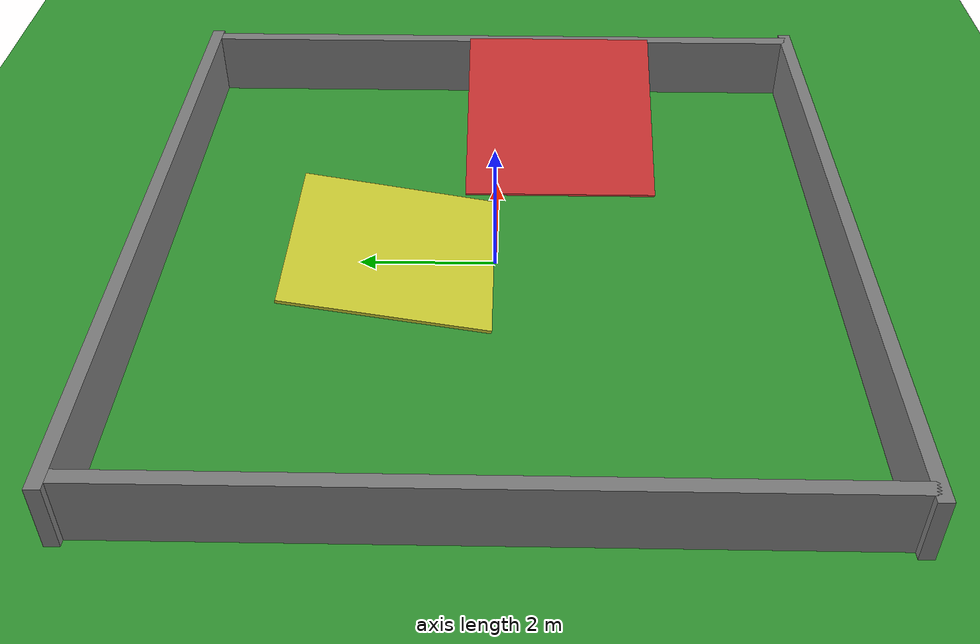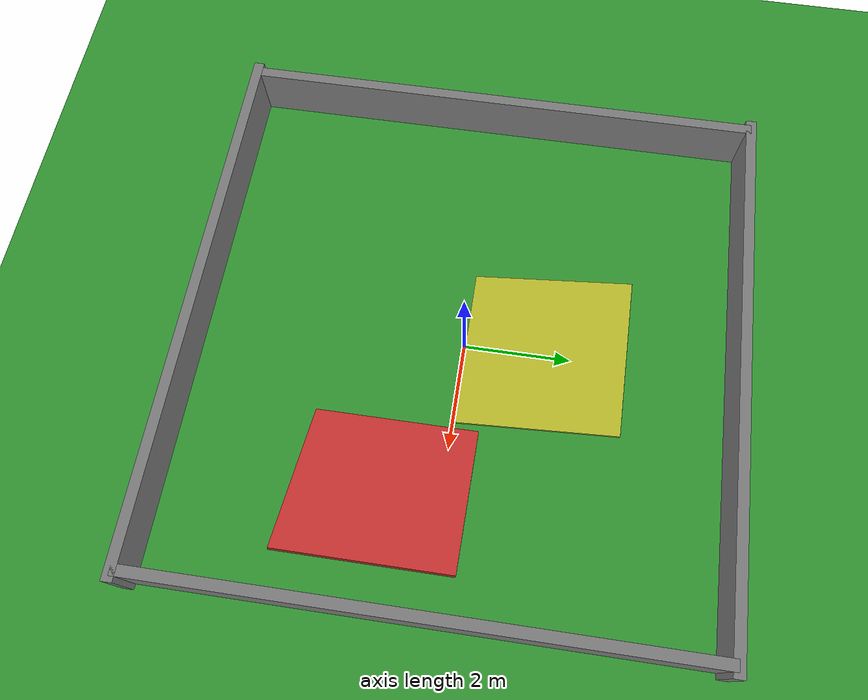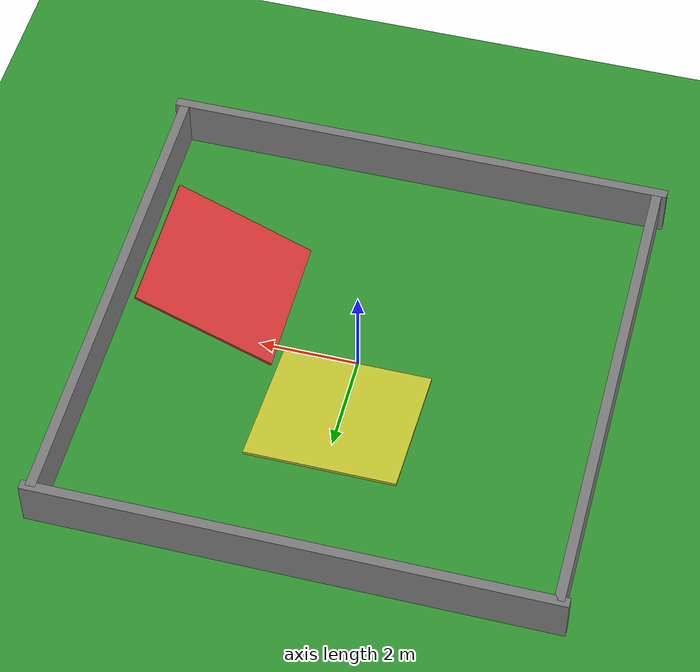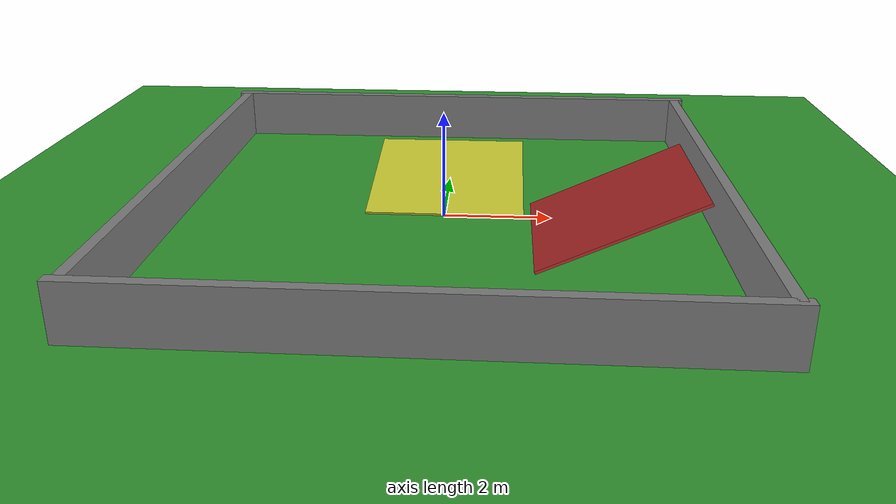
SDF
<?xml version="1.0" ?>
<sdf version="1.8">
  <world name="slope_test_world">

    <!-- 必須プラグイン -->
    <plugin filename="gz-sim-physics-system"
            name="gz::sim::systems::Physics">
    </plugin>
    <plugin filename="gz-sim-user-commands-system"
            name="gz::sim::systems::UserCommands">
    </plugin>
    <plugin filename="gz-sim-scene-broadcaster-system"
            name="gz::sim::systems::SceneBroadcaster">
    </plugin>
    <plugin filename="gz-sim-sensors-system"
            name="gz::sim::systems::Sensors">
      <render_engine>ogre2</render_engine>
    </plugin>

    <!-- 太陽光 -->
    <light type="directional" name="sun">
      <cast_shadows>true</cast_shadows>
      <pose>0 0 10 0 0 0</pose>
      <diffuse>0.8 0.8 0.8 1</diffuse>
      <specular>0.2 0.2 0.2 1</specular>
      <attenuation>
        <range>1000</range>
        <constant>0.9</constant>
        <linear>0.01</linear>
        <quadratic>0.001</quadratic>
      </attenuation>
      <direction>-0.5 0.1 -0.9</direction>
    </light>

    <!-- 地面 (平坦部) -->
    <model name="ground_plane">
      <static>true</static>
      <link name="link">
        <collision name="collision">
          <geometry>
            <plane>
              <normal>0 0 1</normal>
              <size>100 100</size>
            </plane>
          </geometry>
        </collision>
        <visual name="visual">
          <geometry>
            <plane>
              <normal>0 0 1</normal>
              <size>100 100</size>
            </plane>
          </geometry>
          <material>
            <ambient>0.2 0.6 0.2 1</ambient>
            <diffuse>0.2 0.6 0.2 1</diffuse>
            <specular>0.1 0.1 0.1 1</specular>
          </material>
        </visual>
      </link>
    </model>

    <!-- 緩やかな傾斜面 (約 10°): 北方向に配置                      -->
    <!-- tan(10°) ≈ 0.176, 3m の長さで約 0.53m 上昇 -->
    <!-- 中心位置: x=0, y=1.5, z=0.26 -->
    <model name="gentle_slope">
      <pose>0 1.5 0.26 0.1745 0 0</pose>
      <static>true</static>
      <link name="link">
        <collision name="collision">
          <geometry>
            <box><size>3.0 3.0 0.05</size></box>
          </geometry>
          <surface>
            <friction>
              <ode><mu>1.0</mu><mu2>1.0</mu2></ode>
            </friction>
          </surface>
        </collision>
        <visual name="visual">
          <geometry>
            <box><size>3.0 3.0 0.05</size></box>
          </geometry>
          <material>
            <ambient>0.8 0.8 0.2 1</ambient>
            <diffuse>0.8 0.8 0.2 1</diffuse>
          </material>
        </visual>
      </link>
    </model>

    <!-- 急な傾斜面 (約 25°): 東方向に配置                          -->
    <!-- tan(25°) ≈ 0.466, 3m の長さで約 1.4m 上昇 -->
    <!-- 中心位置: x=3.0, y=-1.0, z=0.70 -->
    <model name="steep_slope">
      <pose>3.0 -1.0 0.70 0 -0.4363 0</pose>
      <static>true</static>
      <link name="link">
        <collision name="collision">
          <geometry>
            <box><size>3.0 3.0 0.05</size></box>
          </geometry>
          <surface>
            <friction>
              <ode><mu>1.0</mu><mu2>1.0</mu2></ode>
            </friction>
          </surface>
        </collision>
        <visual name="visual">
          <geometry>
            <box><size>3.0 3.0 0.05</size></box>
          </geometry>
          <material>
            <ambient>0.8 0.2 0.2 1</ambient>
            <diffuse>0.8 0.2 0.2 1</diffuse>
          </material>
        </visual>
      </link>
    </model>

    <!-- 外壁 (10m x 10m) -->
    <model name="wall_north">
      <pose>0 5 0.5 0 0 0</pose>
      <static>true</static>
      <link name="link">
        <collision name="collision">
          <geometry><box><size>10.4 0.2 1.0</size></box></geometry>
        </collision>
        <visual name="visual">
          <geometry><box><size>10.4 0.2 1.0</size></box></geometry>
          <material>
            <ambient>0.5 0.5 0.5 1</ambient>
            <diffuse>0.5 0.5 0.5 1</diffuse>
          </material>
        </visual>
      </link>
    </model>

    <model name="wall_south">
      <pose>0 -5 0.5 0 0 0</pose>
      <static>true</static>
      <link name="link">
        <collision name="collision">
          <geometry><box><size>10.4 0.2 1.0</size></box></geometry>
        </collision>
        <visual name="visual">
          <geometry><box><size>10.4 0.2 1.0</size></box></geometry>
          <material>
            <ambient>0.5 0.5 0.5 1</ambient>
            <diffuse>0.5 0.5 0.5 1</diffuse>
          </material>
        </visual>
      </link>
    </model>

    <model name="wall_east">
      <pose>5 0 0.5 0 0 0</pose>
      <static>true</static>
      <link name="link">
        <collision name="collision">
          <geometry><box><size>0.2 10.0 1.0</size></box></geometry>
        </collision>
        <visual name="visual">
          <geometry><box><size>0.2 10.0 1.0</size></box></geometry>
          <material>
            <ambient>0.5 0.5 0.5 1</ambient>
            <diffuse>0.5 0.5 0.5 1</diffuse>
          </material>
        </visual>
      </link>
    </model>

    <model name="wall_west">
      <pose>-5 0 0.5 0 0 0</pose>
      <static>true</static>
      <link name="link">
        <collision name="collision">
          <geometry><box><size>0.2 10.0 1.0</size></box></geometry>
        </collision>
        <visual name="visual">
          <geometry><box><size>0.2 10.0 1.0</size></box></geometry>
          <material>
            <ambient>0.5 0.5 0.5 1</ambient>
            <diffuse>0.5 0.5 0.5 1</diffuse>
          </material>
        </visual>
      </link>
    </model>

  </world>
</sdf>
